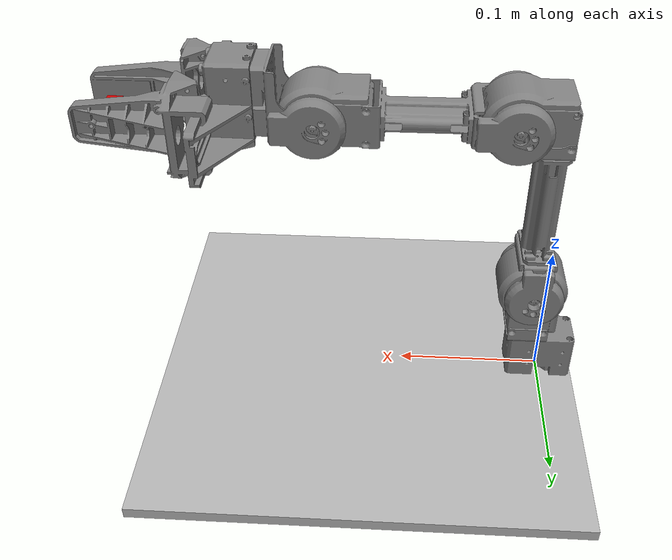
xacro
<?xml version="1.0"?>
<!-- Open_Manipulator Chain -->
<robot name="open_manipulator" xmlns:xacro="http://ros.org/wiki/xacro">

  <!-- Import Rviz colors -->
  <xacro:include filename="$(find open_manipulator_description)/urdf/materials.xacro" />

  <!-- Import all Gazebo-customization elements, including Gazebo colors -->
  <xacro:include filename="$(find open_manipulator_description)/urdf/open_manipulator.gazebo.xacro" />

  <!-- Import Transmission -->
  <xacro:include filename="$(find open_manipulator_description)/urdf/open_manipulator.transmission.xacro" />

  <!-- Import URDF -->
  <xacro:include filename="$(find open_manipulator_description)/urdf/open_manipulator.urdf.xacro" />

  <xacro:macro name="cylinder_inertia" params="m r h">
        <inertia  ixx="${m*(3*r*r+h*h)/12}" ixy = "0" ixz = "0"
                    iyy="${m*(3*r*r+h*h)/12}" iyz = "0"
                    izz="${m*r*r/2}" />
  </xacro:macro>

  <xacro:macro name="box_inertia" params="m x y z">
          <inertia  ixx="${m*(y*y+z*z)/12}" ixy = "0" ixz = "0"
                    iyy="${m*(x*x+z*z)/12}" iyz = "0"
                    izz="${m*(x*x+z*z)/12}" />
  </xacro:macro>

  <xacro:macro name="sphere_inertia" params="m r">
          <inertia  ixx="${2*m*r*r/5}" ixy = "0" ixz = "0"
                    iyy="${2*m*r*r/5}" iyz = "0"
                    izz="${2*m*r*r/5}" />
  </xacro:macro>

  <material name="LightGrey">
      <color rgba="0.7 0.7 0.7 1.0" />
  </material>

  <!-- World -->
  <link name="world"/>

  <link name="baseplate_link">
    <visual>
      <origin xyz="0.125 0 -0.004" />
      <geometry>
        <box size="0.3 0.3 0.008" />
      </geometry>
      <material name="LightGrey"/>
    </visual>
    <inertial>
      <mass value="1"/>
      <xacro:box_inertia m="1" x="0.3" y="0.3" z="0.008"/>
    </inertial>
  </link>

  <joint name="baseplate_joint" type="fixed">
    <origin xyz="0 0 0" />
    <parent link="world" />
    <child link="baseplate_link" />
  </joint>

  <!-- World fixed joint-->
  <joint name="world_fixed" type="fixed">
    <origin xyz="0 0 0" rpy="0 0 0"/>
    <parent link="world"/>
    <child link="link1"/>
  </joint>

  <!-- tool center point -->
  <link name="tcp_link" />
  <joint name="tool0_link" type="fixed">
    <parent link="end_effector_link" />
    <child link="tcp_link" />
    <origin xyz="0.0 0.0 0.0" rpy="0.0 0.0 0.0"/>
  </joint>
</robot>

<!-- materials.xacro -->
<robot>

  <material name="black">
    <color rgba="0.0 0.0 0.0 1.0"/>
  </material>

  <material name="blue">
    <color rgba="0.0 0.0 0.8 1.0"/>
  </material>

  <material name="brown">
    <color rgba="0.8706 0.8118 0.7647 1.0"/>
  </material>

  <material name="dark">
    <color rgba="0.3 0.3 0.3 1.0"/>
  </material>

  <material name="green">
    <color rgba="0.0 0.8 0.0 1.0"/>
  </material>

  <material name="grey">
    <color rgba="0.5 0.5 0.5 1.0"/>
  </material>

  <material name="light_black">
    <color rgba="0.4 0.4 0.4 1.0"/>
  </material>

  <material name="orange">
    <color rgba="1.0 0.4235 0.0392 1.0"/>
  </material>

  <material name="red">
    <color rgba="0.8 0.0 0.0 1.0"/>
  </material>

  <material name="white">
    <color rgba="1.0 1.0 1.0 1.0"/>
  </material>

</robot>

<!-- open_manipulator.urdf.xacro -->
<!-- Open_Manipulator Chain -->
<robot xmlns:xacro="http://ros.org/wiki/xacro">

  <!-- Link 1 -->
  <link name="link1">
    <visual>
      <origin xyz="0 0 0" rpy="0 0 0"/>
      <geometry>
        <mesh filename="package://open_manipulator_description/meshes/chain_link1.stl" scale="0.001 0.001 0.001"/>
      </geometry>
      <material name="grey"/>
    </visual>

    <collision>
      <origin xyz="0 0 0" rpy="0 0 0"/>
      <geometry>
        <mesh filename="package://open_manipulator_description/meshes/chain_link1.stl" scale="0.001 0.001 0.001"/>
      </geometry>
    </collision>

    <inertial>
      <origin xyz="3.0876154e-04 0.0000000e+00 -1.2176461e-04" />
      <mass value="7.9119962e-02" />
      <inertia ixx="1.2505234e-05" ixy="0.0" ixz="-1.7855208e-07"
               iyy="2.1898364e-05" iyz="0.0"
               izz="1.9267361e-05" />
    </inertial>
  </link>

  <!-- Joint 1 -->
  <joint name="joint1" type="revolute">
    <parent link="link1"/>
    <child link="link2"/>
    <origin xyz="0.012 0.0 0.017" rpy="0 0 0"/>
    <axis xyz="0 0 1"/>
    <limit velocity="4.8" effort="1" lower="${-pi*0.9}" upper="${pi*0.9}" />
  </joint>

  <!--  Link 2 -->
  <link name="link2">
    <visual>
      <origin xyz="0 0 0.019" rpy="0 0 0"/>
      <geometry>
        <mesh filename="package://open_manipulator_description/meshes/chain_link2.stl" scale="0.001 0.001 0.001"/>
      </geometry>
      <material name="grey"/>
    </visual>

    <collision>
      <origin xyz="0 0 0.019" rpy="0 0 0"/>
      <geometry>
        <mesh filename="package://open_manipulator_description/meshes/chain_link2.stl" scale="0.001 0.001 0.001"/>
      </geometry>
    </collision>

    <inertial>
      <origin xyz="-3.0184870e-04 5.4043684e-04 ${0.018 + 2.9433464e-02}" />
      <mass value="9.8406837e-02" />
      <inertia ixx="3.4543422e-05" ixy="-1.6031095e-08" ixz="-3.8375155e-07"
               iyy="3.2689329e-05" iyz="2.8511935e-08"
               izz="1.8850320e-05" />
    </inertial>
  </link>

  <!--  Joint 2 -->
  <joint name="joint2" type="revolute">
    <parent link="link2"/>
    <child link="link3"/>
    <origin xyz="0.0 0.0 0.0595" rpy="0 0 0"/>
    <axis xyz="0 1 0"/>
    <limit velocity="4.8" effort="1" lower="${-pi*0.57}" upper="${pi*0.5}" />
  </joint>

  <!--  Link 3 -->
  <link name="link3">
    <visual>
      <origin xyz="0 0 0" rpy="0 0 0"/>
      <geometry>
        <mesh filename="package://open_manipulator_description/meshes/chain_link3.stl" scale="0.001 0.001 0.001"/>
      </geometry>
      <material name="grey"/>
    </visual>

    <collision>
      <origin xyz="0 0 0" rpy="0 0 0"/>
      <geometry>
        <mesh filename="package://open_manipulator_description/meshes/chain_link3.stl" scale="0.001 0.001 0.001"/>
      </geometry>
    </collision>

    <inertial>
      <origin xyz="1.0308393e-02 3.7743363e-04 1.0170197e-01" />
      <mass value="1.3850917e-01" />
      <inertia ixx="3.3055381e-04" ixy="-9.7940978e-08" ixz="-3.8505711e-05"
               iyy="3.4290447e-04" iyz="-1.5717516e-06"
               izz="6.0346498e-05" />
    </inertial>
  </link>

  <!--  Joint 3 -->
  <joint name="joint3" type="revolute">
    <parent link="link3"/>
    <child link="link4"/>
    <origin xyz="0.024 0 0.128" rpy="0 0 0"/>
    <axis xyz="0 1 0"/>
    <limit velocity="4.8" effort="1" lower="${-pi*0.3}" upper="${pi*0.44}" />
  </joint>

  <!--  Link 4 -->
  <link name="link4">
    <visual>
      <origin xyz="0 0 0" rpy="0 0 0"/>
      <geometry>
        <mesh filename="package://open_manipulator_description/meshes/chain_link4.stl" scale="0.001 0.001 0.001"/>
      </geometry>
      <material name="grey"/>
    </visual>

    <collision>
      <origin xyz="0 0 0" rpy="0 0 0"/>
      <geometry>
        <mesh filename="package://open_manipulator_description/meshes/chain_link4.stl" scale="0.001 0.001 0.001"/>
      </geometry>
    </collision>

    <inertial>
      <origin xyz="9.0909590e-02 3.8929816e-04 2.2413279e-04" />
      <mass value="1.3274562e-01" />
      <inertia ixx="3.0654178e-05" ixy="-1.2764155e-06" ixz="-2.6874417e-07"
               iyy="2.4230292e-04" iyz="1.1559550e-08"
               izz="2.5155057e-04" />
    </inertial>
  </link>

  <!--  Joint 4 -->
  <joint name="joint4" type="revolute">
    <parent link="link4"/>
    <child link="link5"/>
    <origin xyz="0.124 0.0 0.0" rpy="0 0 0"/>
    <axis xyz="0 1 0"/>
    <limit velocity="4.8" effort="1" lower="${-pi*0.57}" upper="${pi*0.65}" />
  </joint>

  <!--  Link 5 -->
  <link name="link5">
    <visual>
      <origin xyz="0 0 0" rpy="0 0 0"/>
      <geometry>
        <mesh filename="package://open_manipulator_description/meshes/chain_link5.stl" scale="0.001 0.001 0.001"/>
      </geometry>
      <material name="grey"/>
    </visual>

    <collision>
      <origin xyz="0 0 0" rpy="0 0 0"/>
      <geometry>
        <mesh filename="package://open_manipulator_description/meshes/chain_link5.stl" scale="0.001 0.001 0.001"/>
      </geometry>
    </collision>

    <inertial>
      <origin xyz="4.4206755e-02 3.6839985e-07 8.9142216e-03" />
      <mass value="1.4327573e-01" />
      <inertia ixx="8.0870749e-05" ixy="0.0" ixz="-1.0157896e-06"
               iyy="7.5980465e-05" iyz="0.0"
               izz="9.3127351e-05" />
    </inertial>
  </link>

  <!--  Gripper joint -->
  <joint name="gripper" type="prismatic">
    <parent link="link5"/>
    <child link="gripper_link"/>
    <origin xyz="0.0817 0.021 0.0" rpy="0 0 0"/>
    <axis xyz="0 1 0"/>
    <limit velocity="4.8" effort="1" lower="-0.010" upper="0.019" />
  </joint>

  <!--  Gripper link -->
  <link name="gripper_link">
    <visual>
      <origin xyz="0.0 0.0 0" rpy="0 0 0"/>
      <geometry>
        <mesh filename="package://open_manipulator_description/meshes/chain_link_grip_l.stl" scale="0.001 0.001 0.001"/>
      </geometry>
      <material name="grey"/>
    </visual>

    <collision>
      <origin xyz="0.0 0.0 0" rpy="0 0 0"/>
      <geometry>
        <mesh filename="package://open_manipulator_description/meshes/chain_link_grip_l.stl" scale="0.001 0.001 0.001"/>
      </geometry>
    </collision>

    <inertial>
      <origin xyz="0 0 0" />
      <mass value="1.0e-03" />
      <inertia ixx="1.0e-03" ixy="0.0" ixz="0.0"
               iyy="1.0e-03" iyz="0.0"
               izz="1.0e-03" />
    </inertial>
  </link>

  <!--  Gripper joint sub -->
  <joint name="gripper_sub" type="prismatic">
    <parent link="link5"/>
    <child link="gripper_link_sub"/>
    <origin xyz="0.0817 -0.021 0" rpy="0 0 0"/>
    <axis xyz="0 -1 0"/>
    <limit velocity="4.8" effort="1" lower="-0.010" upper="0.019" />
    <mimic joint="gripper" multiplier="1"/>
  </joint>

  <!--  Gripper link sub -->
  <link name="gripper_link_sub">
    <visual>
      <origin xyz="0.0 -0.0 0" rpy="0 0 0"/>
      <geometry>
        <mesh filename="package://open_manipulator_description/meshes/chain_link_grip_r.stl" scale="0.001 0.001 0.001"/>
      </geometry>
      <material name="grey"/>
    </visual>

    <collision>
      <origin xyz="0.0 -0.0 0" rpy="0 0 0"/>
      <geometry>
        <mesh filename="package://open_manipulator_description/meshes/chain_link_grip_r.stl" scale="0.001 0.001 0.001"/>
      </geometry>
    </collision>

    <inertial>
      <origin xyz="0 0 0" />
      <mass value="1.0e-03" />
      <inertia ixx="1.0e-03" ixy="0.0" ixz="0.0"
               iyy="1.0e-03" iyz="0.0"
               izz="1.0e-03" />
    </inertial>
  </link>

  <!-- end effector joint -->
  <joint name="end_effector_joint" type="fixed">
    <origin xyz="0.126 0.0 0.0" rpy="0 0 0"/>
    <parent link="link5"/>
    <child link="end_effector_link"/>
  </joint>

  <!-- end effector link -->
  <link name="end_effector_link">
    <visual>
      <origin xyz="0 0 0" rpy="0 0 0"/>
      <geometry>
        <box size="0.01 0.01 0.01" />
      </geometry>
      <material name="red"/>
     </visual>

    <inertial>
      <origin xyz="0 0 0" />
      <mass value="1.0e-03" />
      <inertia ixx="1.0e-03" ixy="0.0" ixz="0.0"
               iyy="1.0e-03" iyz="0.0"
               izz="1.0e-03" />
    </inertial>
  </link>

  <!-- Realsense Camera Joint Position -->

</robot>
